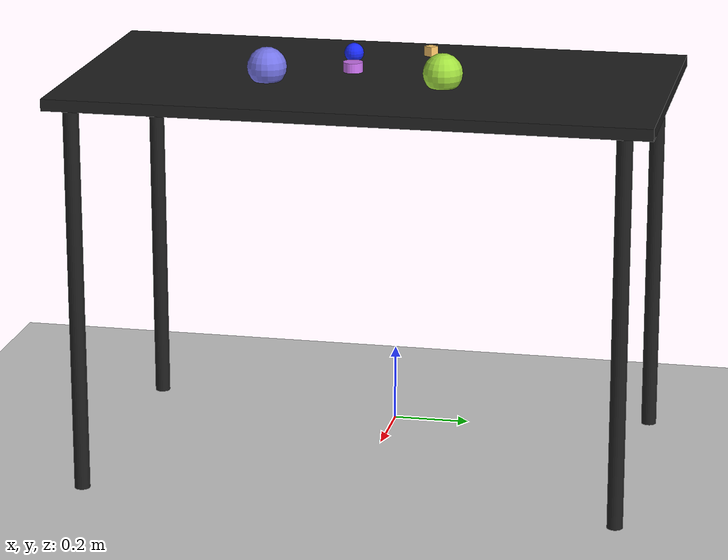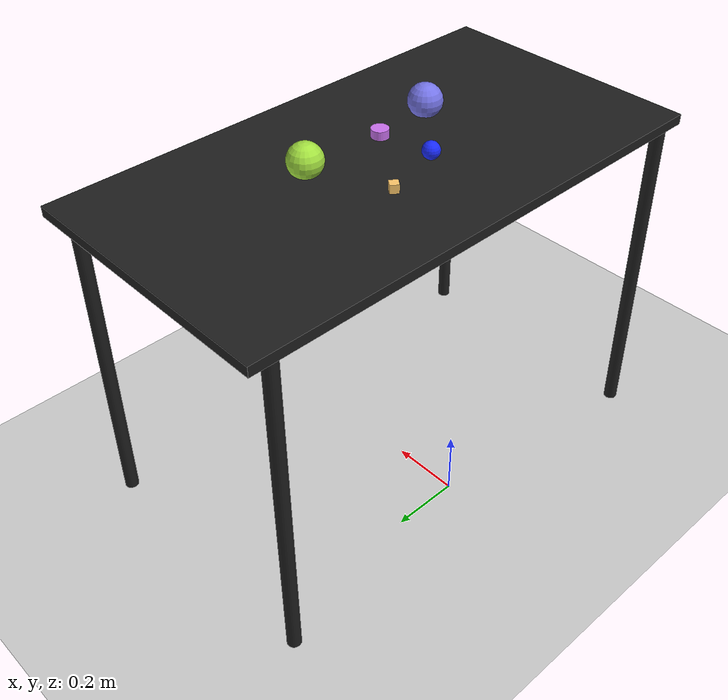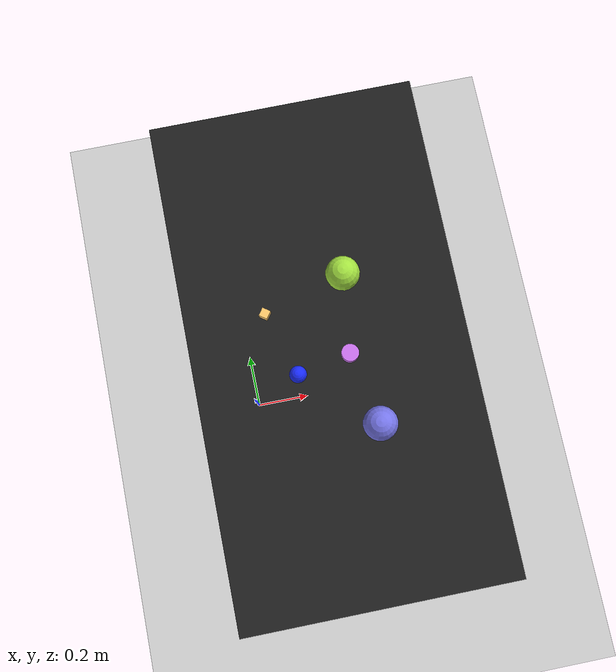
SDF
<?xml version="1.0" ?>
<sdf version="1.6">
  <world name="arm_world">
    <plugin filename="gz-sim-physics-system" name="gz::sim::systems::Physics">
      <engine>
        <filename>libgz-physics-bullet-featherstone-plugin.so</filename>
      </engine>
    </plugin>
    <plugin filename="gz-sim-user-commands-system" name="gz::sim::systems::UserCommands"/>
    <plugin filename="gz-sim-scene-broadcaster-system" name="gz::sim::systems::SceneBroadcaster"/>
    <plugin filename="gz-sim-sensors-system" name="gz::sim::systems::Sensors">
      <render_engine>ogre2</render_engine>
    </plugin>
    <gravity>0.0 0.0 -9.8</gravity>
    <scene>
      <shadows>false</shadows>
    </scene>
    <gui>
      <camera name="user_camera">
        <pose>0.75 -0.75 1.4 0 0.29 2.21</pose>
      </camera>
    </gui>
    <include>
      <uri>https://fuel.gazebosim.org/1.0/OpenRobotics/models/Sun</uri>
    </include>
    <model name="table">
      <static>true</static>
      <include>
        <uri>model://table</uri>
      </include>
      <pose>0.29 0 0 0 0 1.5708</pose>
    </model>
    <model name="ground_plane">
      <static>true</static>
      <link name="link">
        <collision name="collision">
          <geometry>
            <plane>
              <normal>0 0 1</normal>
            </plane>
          </geometry>
          <surface>
            <friction>
              <ode>
                <mu>1.0</mu>
                <mu2>1.0</mu2>
              </ode>
            </friction>
          </surface>
        </collision>
        <visual name="visual">
          <geometry>
            <plane>
              <normal>0 0 1</normal>
              <size>100 100</size>
            </plane>
          </geometry>
          <material>
            <ambient>0.8 0.8 0.8 1</ambient>
            <diffuse>0.8 0.8 0.8 1</diffuse>
            <specular>0.8 0.8 0.8 1</specular>
          </material>
        </visual>
      </link>
    </model>
    <model name="cube_s_0">
      <pose>0.127 0.116 1.05 0 0 2.51</pose>
      <link name="cube_s_0_link">
        <collision name="cube_s_0_collision">
          <geometry>
            <box>
              <size>0.025 0.025 0.025</size>
            </box>
          </geometry>
        </collision>
        <visual name="cube_s_0_visual">
          <geometry>
            <box>
              <size>0.025 0.025 0.025</size>
            </box>
          </geometry>
          <material>
            <ambient>1.0 0.79 0.42 1</ambient>
            <diffuse>1.0 0.79 0.42 1</diffuse>
          </material>
        </visual>
        <velocity_decay>
          <linear>1</linear>
          <angular>1</angular>
        </velocity_decay>
      </link>
    </model>
    <model name="sphere_l_1">
      <pose>0.368 0.19 1.05 0 0 4.97</pose>
      <link name="sphere_l_1_link">
        <collision name="sphere_l_1_collision">
          <geometry>
            <sphere>
              <radius>0.05</radius>
            </sphere>
          </geometry>
        </collision>
        <visual name="sphere_l_1_visual">
          <geometry>
            <sphere>
              <radius>0.05</radius>
            </sphere>
          </geometry>
          <material>
            <ambient>0.64 0.88 0.25 1</ambient>
            <diffuse>0.64 0.88 0.25 1</diffuse>
          </material>
        </visual>
        <velocity_decay>
          <linear>1</linear>
          <angular>1</angular>
        </velocity_decay>
      </link>
    </model>
    <model name="sphere_l_2">
      <pose>0.385 -0.254 1.05 0 0 2.15</pose>
      <link name="sphere_l_2_link">
        <collision name="sphere_l_2_collision">
          <geometry>
            <sphere>
              <radius>0.05</radius>
            </sphere>
          </geometry>
        </collision>
        <visual name="sphere_l_2_visual">
          <geometry>
            <sphere>
              <radius>0.05</radius>
            </sphere>
          </geometry>
          <material>
            <ambient>0.46 0.46 0.91 1</ambient>
            <diffuse>0.46 0.46 0.91 1</diffuse>
          </material>
        </visual>
        <velocity_decay>
          <linear>1</linear>
          <angular>1</angular>
        </velocity_decay>
      </link>
    </model>
    <model name="sphere_m_3">
      <pose>0.186 -0.073 1.05 0 0 5.88</pose>
      <link name="sphere_m_3_link">
        <collision name="sphere_m_3_collision">
          <geometry>
            <sphere>
              <radius>0.025</radius>
            </sphere>
          </geometry>
        </collision>
        <visual name="sphere_m_3_visual">
          <geometry>
            <sphere>
              <radius>0.025</radius>
            </sphere>
          </geometry>
          <material>
            <ambient>0.1 0.17 0.99 1</ambient>
            <diffuse>0.1 0.17 0.99 1</diffuse>
          </material>
        </visual>
        <velocity_decay>
          <linear>1</linear>
          <angular>1</angular>
        </velocity_decay>
      </link>
    </model>
    <model name="cylinder_m_4">
      <pose>0.342 -0.043 1.05 0 0 3.29</pose>
      <link name="cylinder_m_4_link">
        <collision name="cylinder_m_4_collision">
          <geometry>
            <cylinder>
              <radius>0.025</radius>
              <length>0.025</length>
            </cylinder>
          </geometry>
        </collision>
        <visual name="cylinder_m_4_visual">
          <geometry>
            <cylinder>
              <radius>0.025</radius>
              <length>0.025</length>
            </cylinder>
          </geometry>
          <material>
            <ambient>0.8 0.45 0.94 1</ambient>
            <diffuse>0.8 0.45 0.94 1</diffuse>
          </material>
        </visual>
        <velocity_decay>
          <linear>1</linear>
          <angular>1</angular>
        </velocity_decay>
      </link>
    </model>
  </world>
</sdf>

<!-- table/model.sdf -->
<sdf version="1.5">
  <model name="table">
    <static>true</static>
    <link name="link">
      <collision name="surface">
        <pose>0 0 1.0 0 0 0</pose>
        <geometry>
          <box>
            <size>1.5 0.8 0.03</size>
          </box>
        </geometry>
        <surface>
          <friction>
            <ode>
              <mu>0.6</mu>
              <mu2>0.6</mu2>
            </ode>
          </friction>
        </surface>
      </collision>
      <visual name="surface">
        <pose>0 0 1.0 0 0 0</pose>
        <geometry>
          <box>
            <size>1.5 0.8 0.03</size>
          </box>
        </geometry>
        <material>
          <script>
            <uri>file://media/materials/scripts/gazebo.material</uri>
            <name>Gazebo/Black</name>
          </script>
        </material>
      </visual>
      <collision name="front_left_leg">
        <pose>0.68 0.38 0.5 0 0 0</pose>
        <geometry>
          <cylinder>
            <radius>0.02</radius>
            <length>1.0</length>
          </cylinder>
        </geometry>
      </collision>
      <visual name="front_left_leg">
        <pose>0.68 0.38 0.5 0 0 0</pose>
        <geometry>
          <cylinder>
            <radius>0.02</radius>
            <length>1.0</length>
          </cylinder>
        </geometry>
        <material>
          <script>
            <uri>file://media/materials/scripts/gazebo.material</uri>
            <name>Gazebo/Black</name>
          </script>
        </material>
      </visual>
      <collision name="front_right_leg">
        <pose>0.68 -0.38 0.5 0 0 0</pose>
        <geometry>
          <cylinder>
            <radius>0.02</radius>
            <length>1.0</length>
          </cylinder>
        </geometry>
      </collision>
      <visual name="front_right_leg">
        <pose>0.68 -0.38 0.5 0 0 0</pose>
        <geometry>
          <cylinder>
            <radius>0.02</radius>
            <length>1.0</length>
          </cylinder>
        </geometry>
        <material>
          <script>
            <uri>file://media/materials/scripts/gazebo.material</uri>
            <name>Gazebo/Black</name>
          </script>
        </material>
      </visual>
      <collision name="back_right_leg">
        <pose>-0.68 -0.38 0.5 0 0 0</pose>
        <geometry>
          <cylinder>
            <radius>0.02</radius>
            <length>1.0</length>
          </cylinder>
        </geometry>
      </collision>
      <visual name="back_right_leg">
        <pose>-0.68 -0.38 0.5 0 0 0</pose>
        <geometry>
          <cylinder>
            <radius>0.02</radius>
            <length>1.0</length>
          </cylinder>
        </geometry>
        <material>
          <script>
            <uri>file://media/materials/scripts/gazebo.material</uri>
            <name>Gazebo/Black</name>
          </script>
        </material>
      </visual>
      <collision name="back_left_leg">
        <pose>-0.68 0.38 0.5 0 0 0</pose>
        <geometry>
          <cylinder>
            <radius>0.02</radius>
            <length>1.0</length>
          </cylinder>
        </geometry>
      </collision>
      <visual name="back_left_leg">
        <pose>-0.68 0.38 0.5 0 0 0</pose>
        <geometry>
          <cylinder>
            <radius>0.02</radius>
            <length>1.0</length>
          </cylinder>
        </geometry>
        <material>
          <script>
            <uri>file://media/materials/scripts/gazebo.material</uri>
            <name>Gazebo/Black</name>
          </script>
        </material>
      </visual>
    </link>
  </model>
</sdf>
